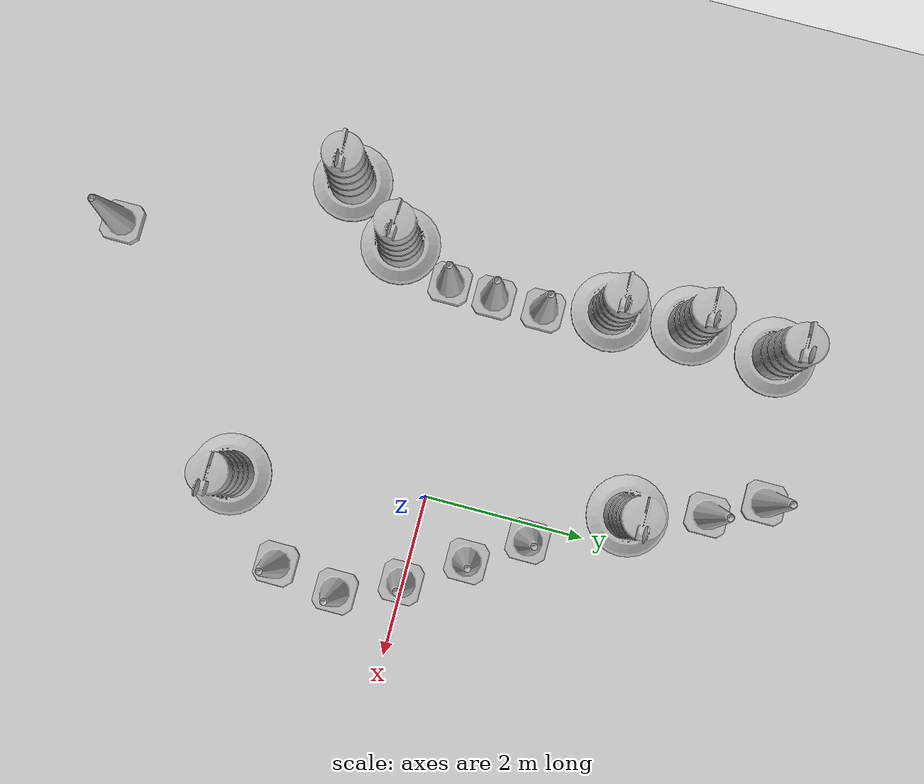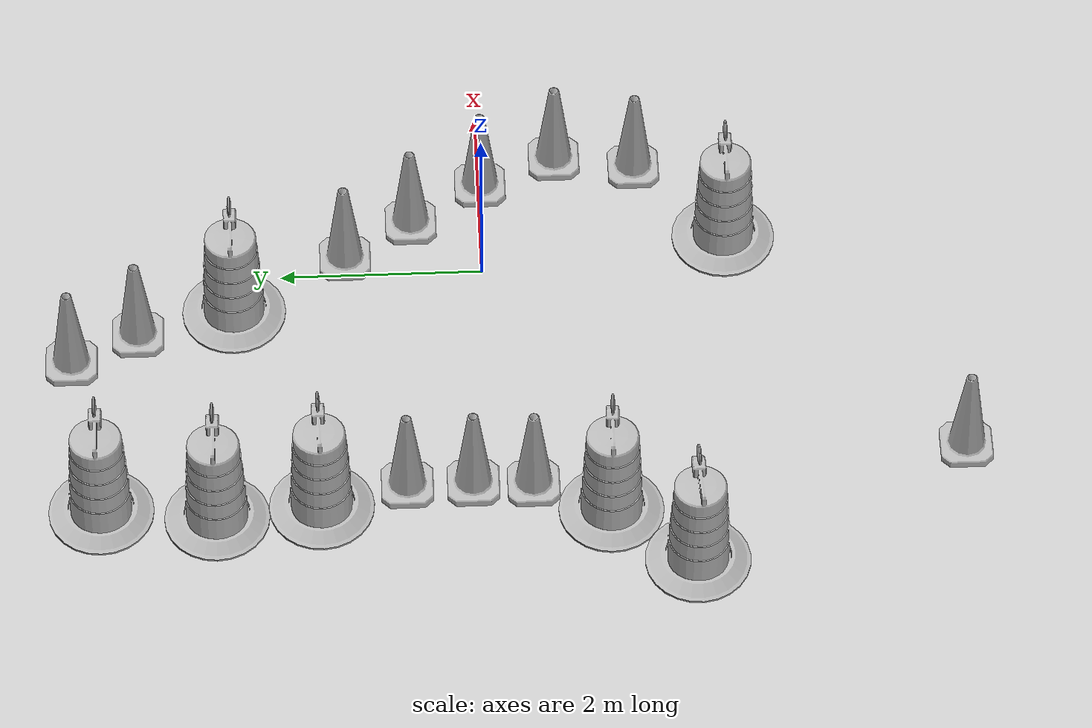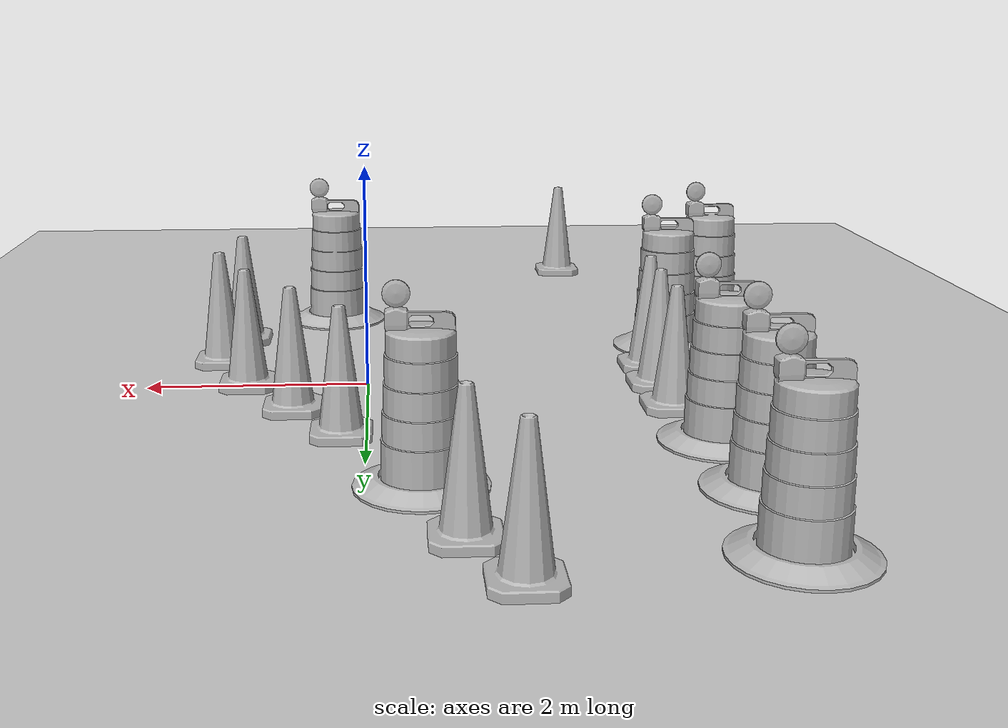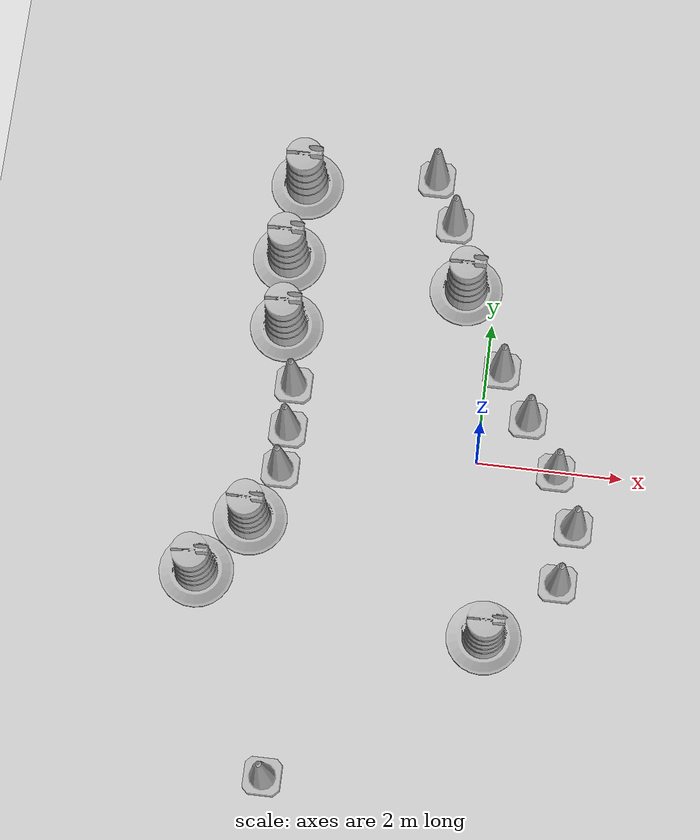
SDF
<sdf version="1.7">
 <world name="default">
  <model name="ground_plane">
   <static>1</static>
   <link name="link">
    <collision name="collision">
     <geometry><plane><normal>0 0 1</normal><size>100 100</size></plane></geometry>
     <surface>
      <contact><collide_bitmask>65535</collide_bitmask></contact>
      <friction><ode><mu>100</mu><mu2>50</mu2></ode></friction>
     </surface>
    </collision>
    <visual name="visual">
     <cast_shadows>0</cast_shadows>
     <geometry><plane><normal>0 0 1</normal><size>100 100</size></plane></geometry>
     <material>
      <script><uri>file://media/materials/scripts/gazebo.material</uri><name>Gazebo/Grey</name></script>
     </material>
    </visual>
   </link>
  </model>
  <gravity>0 0 -9.8</gravity>
  <magnetic_field>6e-06 2.3e-05 -4.2e-05</magnetic_field>
  <atmosphere type="adiabatic"/>
  <physics type="ode">
   <max_step_size>0.001</max_step_size>
   <real_time_factor>1</real_time_factor>
   <real_time_update_rate>1000</real_time_update_rate>
  </physics>
  <scene><ambient>0.4 0.4 0.4 1</ambient><background>0.7 0.7 0.7 1</background><shadows>1</shadows></scene>
  <spherical_coordinates>
   <surface_model>EARTH_WGS84</surface_model>
   <latitude_deg>0</latitude_deg>
   <longitude_deg>0</longitude_deg>
   <elevation>0</elevation>
   <heading_deg>0</heading_deg>
  </spherical_coordinates>
  <model name="Construction Cone">
   <link name="link">
    <collision name="collision">
     <geometry>
      <mesh><scale>10 10 10</scale><uri>model://construction_cone/meshes/construction_cone.dae</uri></mesh>
     </geometry>
    </collision>
    <visual name="visual">
     <geometry>
      <mesh><scale>10 10 10</scale><uri>model://construction_cone/meshes/construction_cone.dae</uri></mesh>
     </geometry>
    </visual>
    <inertial>
     <inertia><ixx>1</ixx><ixy>0</ixy><ixz>0</ixz><iyy>1</iyy><iyz>0</iyz><izz>1</izz></inertia>
     <mass>1</mass>
    </inertial>
   </link>
   <pose>-2.63284 0.820787 -1e-05 0 1e-06 0</pose>
  </model>
  <model name="Construction Barrel">
   <link name="link">
    <inertial>
     <pose>0 0 0.4 0 -0 0</pose>
     <mass>500</mass>
     <inertia><ixx>51.2096</ixx><iyy>51.2096</iyy><izz>25</izz><ixy>0</ixy><ixz>0</ixz><iyz>0</iyz></inertia>
    </inertial>
    <collision name="collision">
     <geometry><mesh><uri>model://construction_barrel/meshes/construction_barrel.dae</uri></mesh></geometry>
    </collision>
    <visual name="visual">
     <geometry><mesh><uri>model://construction_barrel/meshes/construction_barrel.dae</uri></mesh></geometry>
    </visual>
   </link>
   <pose>-2.93423 2.66367 -3e-06 -1e-05 6e-06 -0.004441</pose>
  </model>
  <model name="Construction Cone_0">
   <link name="link">
    <collision name="collision">
     <geometry>
      <mesh><scale>10 10 10</scale><uri>model://construction_cone/meshes/construction_cone.dae</uri></mesh>
     </geometry>
    </collision>
    <visual name="visual">
     <geometry>
      <mesh><scale>10 10 10</scale><uri>model://construction_cone/meshes/construction_cone.dae</uri></mesh>
     </geometry>
    </visual>
    <inertial>
     <inertia><ixx>1</ixx><ixy>0</ixy><ixz>0</ixz><iyy>1</iyy><iyz>0</iyz><izz>1</izz></inertia>
     <mass>1</mass>
    </inertial>
   </link>
   <pose>-1.00585 4.06951 -0 0 -0 0</pose>
  </model>
  <model name="Construction Barrel_0">
   <link name="link">
    <inertial>
     <pose>0 0 0.4 0 -0 0</pose>
     <mass>500</mass>
     <inertia><ixx>51.2096</ixx><iyy>51.2096</iyy><izz>25</izz><ixy>0</ixy><ixz>0</ixz><iyz>0</iyz></inertia>
    </inertial>
    <collision name="collision">
     <geometry><mesh><uri>model://construction_barrel/meshes/construction_barrel.dae</uri></mesh></geometry>
    </collision>
    <visual name="visual">
     <geometry><mesh><uri>model://construction_barrel/meshes/construction_barrel.dae</uri></mesh></geometry>
    </visual>
   </link>
   <pose>-0.41672 2.46783 -1e-06 3e-06 -2e-06 -2.5e-05</pose>
  </model>
  <model name="Construction Cone_1">
   <link name="link">
    <collision name="collision">
     <geometry>
      <mesh><scale>10 10 10</scale><uri>model://construction_cone/meshes/construction_cone.dae</uri></mesh>
     </geometry>
    </collision>
    <visual name="visual">
     <geometry>
      <mesh><scale>10 10 10</scale><uri>model://construction_cone/meshes/construction_cone.dae</uri></mesh>
     </geometry>
    </visual>
    <inertial>
     <inertia><ixx>1</ixx><ixy>0</ixy><ixz>0</ixz><iyy>1</iyy><iyz>0</iyz><izz>1</izz></inertia>
     <mass>1</mass>
    </inertial>
   </link>
   <pose>-2.3554 -4.62284 -0 0 -0 0</pose>
  </model>
  <model name="Construction Barrel_1">
   <link name="link">
    <inertial>
     <pose>0 0 0.4 0 -0 0</pose>
     <mass>500</mass>
     <inertia><ixx>51.2096</ixx><iyy>51.2096</iyy><izz>25</izz><ixy>0</ixy><ixz>0</ixz><iyz>0</iyz></inertia>
    </inertial>
    <collision name="collision">
     <geometry><mesh><uri>model://construction_barrel/meshes/construction_barrel.dae</uri></mesh></geometry>
    </collision>
    <visual name="visual">
     <geometry><mesh><uri>model://construction_barrel/meshes/construction_barrel.dae</uri></mesh></geometry>
    </visual>
   </link>
   <pose>0.354865 -2.41485 -1e-06 3e-06 -2e-06 -2.2e-05</pose>
  </model>
  <model name="Construction Cone_2">
   <link name="link">
    <collision name="collision">
     <geometry>
      <mesh><scale>10 10 10</scale><uri>model://construction_cone/meshes/construction_cone.dae</uri></mesh>
     </geometry>
    </collision>
    <visual name="visual">
     <geometry>
      <mesh><scale>10 10 10</scale><uri>model://construction_cone/meshes/construction_cone.dae</uri></mesh>
     </geometry>
    </visual>
    <inertial>
     <inertia><ixx>1</ixx><ixy>0</ixy><ixz>0</ixz><iyy>1</iyy><iyz>0</iyz><izz>1</izz></inertia>
     <mass>1</mass>
    </inertial>
   </link>
   <pose>1.27076 -1.5658 -0 0 -0 0</pose>
  </model>
  <model name="Construction Barrel_2">
   <link name="link">
    <inertial>
     <pose>0 0 0.4 0 -0 0</pose>
     <mass>500</mass>
     <inertia><ixx>51.2096</ixx><iyy>51.2096</iyy><izz>25</izz><ixy>0</ixy><ixz>0</ixz><iyz>0</iyz></inertia>
    </inertial>
    <collision name="collision">
     <geometry><mesh><uri>model://construction_barrel/meshes/construction_barrel.dae</uri></mesh></geometry>
    </collision>
    <visual name="visual">
     <geometry><mesh><uri>model://construction_barrel/meshes/construction_barrel.dae</uri></mesh></geometry>
    </visual>
   </link>
   <pose>-3.61301 -1.93918 1e-06 3e-06 2e-06 0.064191</pose>
  </model>
  <model name="Construction Cone_3">
   <link name="link">
    <collision name="collision">
     <geometry>
      <mesh><scale>10 10 10</scale><uri>model://construction_cone/meshes/construction_cone.dae</uri></mesh>
     </geometry>
    </collision>
    <visual name="visual">
     <geometry>
      <mesh><scale>10 10 10</scale><uri>model://construction_cone/meshes/construction_cone.dae</uri></mesh>
     </geometry>
    </visual>
    <inertial>
     <inertia><ixx>1</ixx><ixy>0</ixy><ixz>0</ixz><iyy>1</iyy><iyz>0</iyz><izz>1</izz></inertia>
     <mass>1</mass>
    </inertial>
   </link>
   <pose>1.40642 -0.771412 -0 0 -0 0</pose>
  </model>
  <model name="Construction Barrel_3">
   <link name="link">
    <inertial>
     <pose>0 0 0.4 0 -0 0</pose>
     <mass>500</mass>
     <inertia><ixx>51.2096</ixx><iyy>51.2096</iyy><izz>25</izz><ixy>0</ixy><ixz>0</ixz><iyz>0</iyz></inertia>
    </inertial>
    <collision name="collision">
     <geometry><mesh><uri>model://construction_barrel/meshes/construction_barrel.dae</uri></mesh></geometry>
    </collision>
    <visual name="visual">
     <geometry><mesh><uri>model://construction_barrel/meshes/construction_barrel.dae</uri></mesh></geometry>
    </visual>
   </link>
   <pose>-2.81802 3.77995 -1e-06 2e-06 -2e-06 -1.8e-05</pose>
  </model>
  <model name="Construction Cone_4">
   <link name="link">
    <collision name="collision">
     <geometry>
      <mesh><scale>10 10 10</scale><uri>model://construction_cone/meshes/construction_cone.dae</uri></mesh>
     </geometry>
    </collision>
    <visual name="visual">
     <geometry>
      <mesh><scale>10 10 10</scale><uri>model://construction_cone/meshes/construction_cone.dae</uri></mesh>
     </geometry>
    </visual>
    <inertial>
     <inertia><ixx>1</ixx><ixy>0</ixy><ixz>0</ixz><iyy>1</iyy><iyz>0</iyz><izz>1</izz></inertia>
     <mass>1</mass>
    </inertial>
   </link>
   <pose>1.09062 -0.017178 -0 0 -0 0</pose>
  </model>
  <model name="Construction Cone_5">
   <link name="link">
    <collision name="collision">
     <geometry>
      <mesh><scale>10 10 10</scale><uri>model://construction_cone/meshes/construction_cone.dae</uri></mesh>
     </geometry>
    </collision>
    <visual name="visual">
     <geometry>
      <mesh><scale>10 10 10</scale><uri>model://construction_cone/meshes/construction_cone.dae</uri></mesh>
     </geometry>
    </visual>
    <inertial>
     <inertia><ixx>1</ixx><ixy>0</ixy><ixz>0</ixz><iyy>1</iyy><iyz>0</iyz><izz>1</izz></inertia>
     <mass>1</mass>
    </inertial>
   </link>
   <pose>0.635976 0.691407 -0 0 -1e-06 0</pose>
  </model>
  <model name="Construction Cone_6">
   <link name="link">
    <collision name="collision">
     <geometry>
      <mesh><scale>10 10 10</scale><uri>model://construction_cone/meshes/construction_cone.dae</uri></mesh>
     </geometry>
    </collision>
    <visual name="visual">
     <geometry>
      <mesh><scale>10 10 10</scale><uri>model://construction_cone/meshes/construction_cone.dae</uri></mesh>
     </geometry>
    </visual>
    <inertial>
     <inertia><ixx>1</ixx><ixy>0</ixy><ixz>0</ixz><iyy>1</iyy><iyz>0</iyz><izz>1</izz></inertia>
     <mass>1</mass>
    </inertial>
   </link>
   <pose>0.202655 1.35679 -0 0 -1e-06 0</pose>
  </model>
  <model name="Construction Cone_7">
   <link name="link">
    <collision name="collision">
     <geometry>
      <mesh><scale>10 10 10</scale><uri>model://construction_cone/meshes/construction_cone.dae</uri></mesh>
     </geometry>
    </collision>
    <visual name="visual">
     <geometry>
      <mesh><scale>10 10 10</scale><uri>model://construction_cone/meshes/construction_cone.dae</uri></mesh>
     </geometry>
    </visual>
    <inertial>
     <inertia><ixx>1</ixx><ixy>0</ixy><ixz>0</ixz><iyy>1</iyy><iyz>0</iyz><izz>1</izz></inertia>
     <mass>1</mass>
    </inertial>
   </link>
   <pose>-0.678744 3.41645 0 -0 -0 -0</pose>
  </model>
  <model name="Construction Barrel_4">
   <link name="link">
    <inertial>
     <pose>0 0 0.4 0 -0 0</pose>
     <mass>500</mass>
     <inertia><ixx>51.2096</ixx><iyy>51.2096</iyy><izz>25</izz><ixy>0</ixy><ixz>0</ixz><iyz>0</iyz></inertia>
    </inertial>
    <collision name="collision">
     <geometry><mesh><uri>model://construction_barrel/meshes/construction_barrel.dae</uri></mesh></geometry>
    </collision>
    <visual name="visual">
     <geometry><mesh><uri>model://construction_barrel/meshes/construction_barrel.dae</uri></mesh></geometry>
    </visual>
   </link>
   <pose>-2.84132 1.65336 -0 0 -0 0.028072</pose>
  </model>
  <model name="Construction Cone_8">
   <link name="link">
    <collision name="collision">
     <geometry>
      <mesh><scale>10 10 10</scale><uri>model://construction_cone/meshes/construction_cone.dae</uri></mesh>
     </geometry>
    </collision>
    <visual name="visual">
     <geometry>
      <mesh><scale>10 10 10</scale><uri>model://construction_cone/meshes/construction_cone.dae</uri></mesh>
     </geometry>
    </visual>
    <inertial>
     <inertia><ixx>1</ixx><ixy>0</ixy><ixz>0</ixz><iyy>1</iyy><iyz>0</iyz><izz>1</izz></inertia>
     <mass>1</mass>
    </inertial>
   </link>
   <pose>-2.63272 0.181626 -1e-05 0 -0 0</pose>
  </model>
  <model name="Construction Cone_9">
   <link name="link">
    <collision name="collision">
     <geometry>
      <mesh><scale>10 10 10</scale><uri>model://construction_cone/meshes/construction_cone.dae</uri></mesh>
     </geometry>
    </collision>
    <visual name="visual">
     <geometry>
      <mesh><scale>10 10 10</scale><uri>model://construction_cone/meshes/construction_cone.dae</uri></mesh>
     </geometry>
    </visual>
    <inertial>
     <inertia><ixx>1</ixx><ixy>0</ixy><ixz>0</ixz><iyy>1</iyy><iyz>0</iyz><izz>1</izz></inertia>
     <mass>1</mass>
    </inertial>
   </link>
   <pose>-2.6602 -0.400513 -0 0 -0 0.004534</pose>
  </model>
  <model name="Construction Barrel_5">
   <link name="link">
    <inertial>
     <pose>0 0 0.4 0 -0 0</pose>
     <mass>500</mass>
     <inertia><ixx>51.2096</ixx><iyy>51.2096</iyy><izz>25</izz><ixy>0</ixy><ixz>0</ixz><iyz>0</iyz></inertia>
    </inertial>
    <collision name="collision">
     <geometry><mesh><uri>model://construction_barrel/meshes/construction_barrel.dae</uri></mesh></geometry>
    </collision>
    <visual name="visual">
     <geometry><mesh><uri>model://construction_barrel/meshes/construction_barrel.dae</uri></mesh></geometry>
    </visual>
   </link>
   <pose>-2.98498 -1.13791 -0 0 0 -0.03076</pose>
  </model>
 </world>
</sdf>
